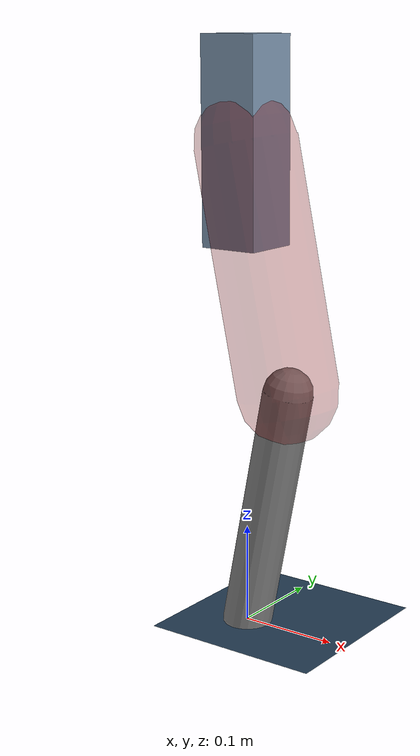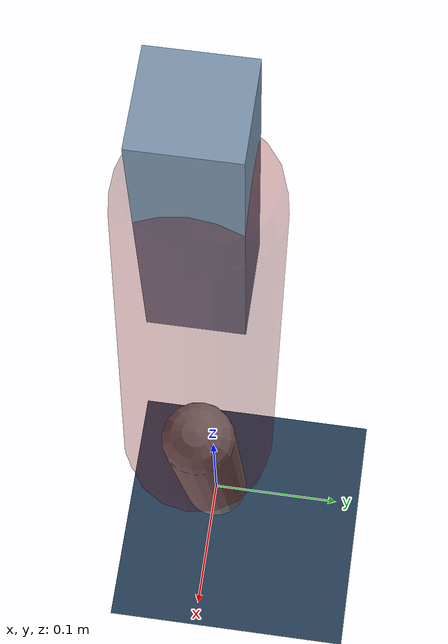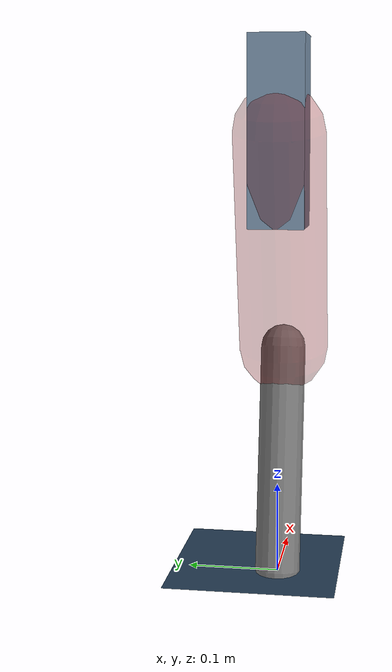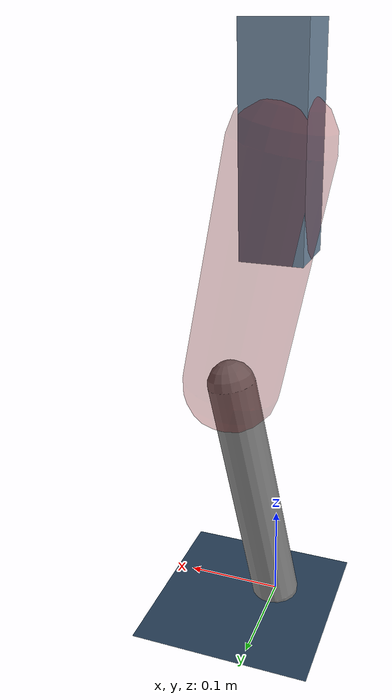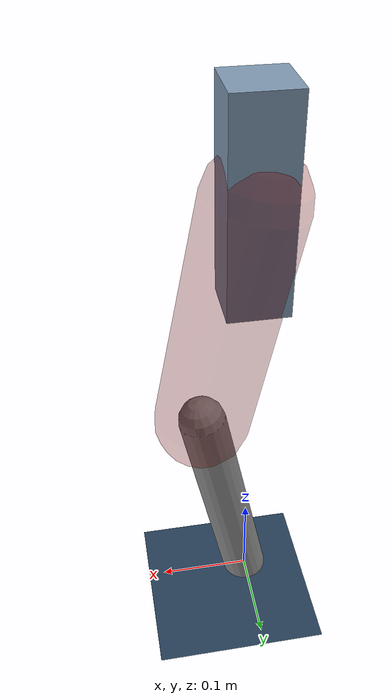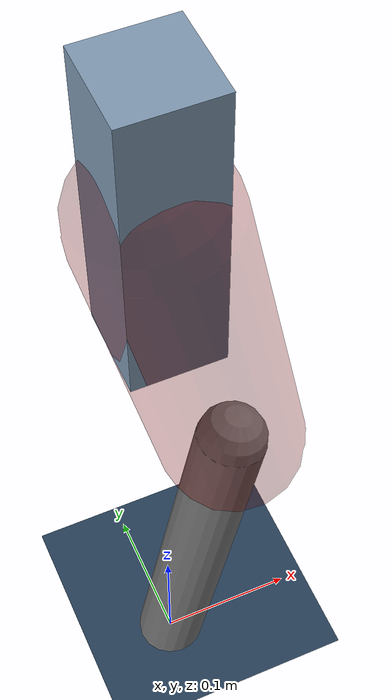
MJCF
<mujoco model="Hopper2D">
	<compiler inertiafromgeom="true" angle="radian" />
	<option timestep="0.001" integrator="implicit" cone="elliptic" solver="Newton" tolerance="1e-10" />

	<default>
		<geom contype="1" conaffinity="1" condim="3" friction="2 0.005 0.0001" solref="0.005 1" />
		<joint limited="true" damping="0.1" />
	</default>

	<asset>
		<texture name="skybox" type="skybox" builtin="gradient" rgb1=".4 .6 .8" rgb2="0 0 0" width="800" height="800" />
		<texture name="grid" type="2d" builtin="checker" rgb1=".1 .2 .3" rgb2=".2 .3 .4" width="300" height="300" mark="edge" markrgb=".2 .3 .4" />
		<material name="ground" texture="grid" texrepeat="1 1" texuniform="true" reflectance="0.1" />
		<material name="leg" rgba="0.5 0.6 0.7 1" />
	</asset>

	<worldbody>

		<geom name="floor" type="plane" size="5 5 0.25" material="ground" />

		<light directional="false" diffuse="0.8 0.8 0.8" specular="0.3 0.3 0.3" pos="0 0 2" dir="0 0 -1" />
		<light mode="targetbodycom" target="base" directional="false" diffuse="0.8 0.8 0.8" specular="0.3 0.3 0.3" pos="0 0 2" dir="0 0 -1" />

		<camera name="fixed" pos="0 -2 1" xyaxes="1 0 0 0 0 1" />
		<camera name="tracking" mode="trackcom" pos="0 -3 1" />

		<body name="root" pos="0 0 0.4851420230030637">
			<joint name="slide_x" type="slide" axis="1 0 0" range="-100 100" />
			<joint name="slide_z" type="slide" axis="0 0 1" range="0 10" />

			<body name="base" pos="0 0 0">
				<geom name="torso" type="box" size="0.03 0.03 0.1" mass="2.1550000000000002" material="leg" />

				<body name="link1" pos="0 0 0" euler="0 1.3662755580974753 0">
					<joint type="hinge" axis="0 -1 0" pos="0 0 0" name="hinge1" limited="true" range="-3.14 3.14" stiffness="0" damping="0.1" />
					<geom name="thigh" type="capsule" fromto="0 0 0 0.24371689025940763 0 0" size="0.05" rgba="0.5 0 0 0.3" mass="0.8401639146744598" />

					<body name="link2" pos="0.24371689025940763 0 0" euler="0 0.40268653068630755 0">
						<joint type="hinge" axis="0 -1 0" pos="0 0 0" name="hinge2" limited="true" range="-3.14 3.14" stiffness="0" damping="0.1" />
						<geom name="shank" type="capsule" fromto="0 0 0 0.2514251327436561 0 0" size="0.025" mass="0.4436826194692905" />

					</body>
				</body>
			</body>
		</body>
	</worldbody>

	<actuator>
		<motor name="torque1" joint="hinge1" ctrlrange="-88.183046456235 88.183046456235" ctrllimited="true" gear="1" />
		<motor name="torque2" joint="hinge2" ctrlrange="-76.58882312683167 76.58882312683167" ctrllimited="true" gear="1" />
	</actuator>
</mujoco>
